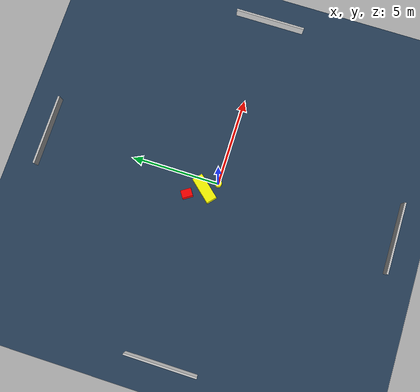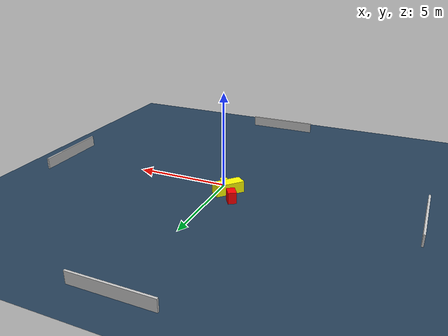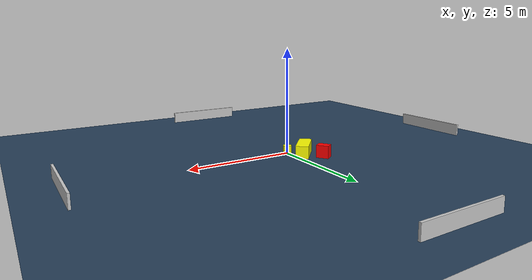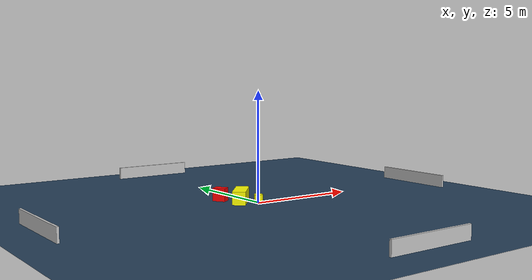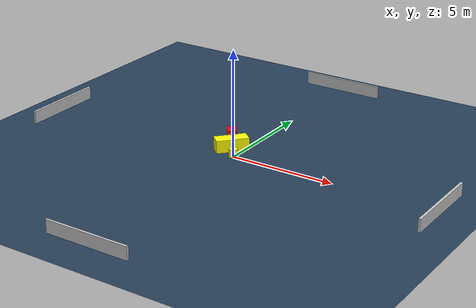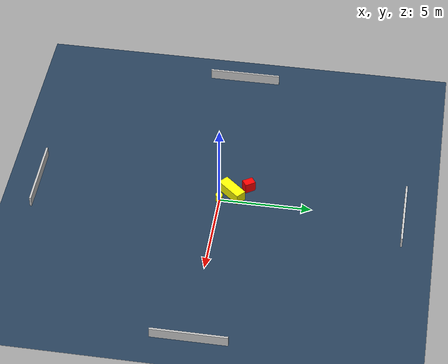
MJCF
<?xml version="1.0" ?>
<mujoco model="generated_environment">
  <option timestep="0.01" integrator="RK4" cone="elliptic"/>
  <default>
    <geom density="1"/>
  </default>
  <asset>
    <texture builtin="gradient" height="3072" name="skybox" rgb1="0.3 0.5 0.7" rgb2="0 0 0" type="skybox" width="512"/>
    <texture builtin="checker" height="300" name="groundplane" rgb1="0.2 0.3 0.4" rgb2="0.1 0.2 0.3" type="2d" width="300"/>
    <material name="groundplane" reflectance="0.2" texrepeat="5 5" texture="groundplane"/>
  </asset>
  <worldbody>
    <light dir="0 0 -1" directional="true" pos="0 0 1.5"/>
    <geom condim="3" friction="0.5 0.005 0.001" material="groundplane" name="floor" pos="0 0 0" size="0 0 0.05" type="plane"/>
    <body name="walls">
      <geom name="wall_1" condim="4" pos="-10.0 0.0 0.3" rgba="0.800000011920929 0.800000011920929 0.800000011920929 1.0" size="0.05 2.0 0.3" type="box"/>
      <geom name="wall_2" condim="4" pos="10.0 0.0 0.3" rgba="0.800000011920929 0.800000011920929 0.800000011920929 1.0" size="0.05 2.0 0.3" type="box"/>
      <geom name="wall_3" condim="4" pos="0.0 -10.0 0.3" rgba="0.800000011920929 0.800000011920929 0.800000011920929 1.0" size="2.0 0.05 0.3" type="box"/>
      <geom name="wall_4" condim="4" pos="0.0 10.0 0.3" rgba="0.800000011920929 0.800000011920929 0.800000011920929 1.0" size="2.0 0.05 0.3" type="box"/>
    </body>
    <body name="robot">
      <joint name="joint_x" type="slide" pos="0 0 0" axis="1 0 0"/>
      <joint name="joint_y" type="slide" pos="0 0 0" axis="0 1 0"/>
      <geom name="robot" type="cylinder" pos="0.0 0.0 0.2" size="0.2 0.2 0.0" mass="5.0" friction="1.0 0.005 0.0001" condim="4" rgba="1.0 1.0 0.0 1.0"/>
    </body>
    <body name="obstacle_1_movable">
      <geom name="obstacle_1_movable" condim="4" pos="-0.5245618048403574 0.6253682014811318 0.3" euler="0 0 48.758268705217596" friction="0.0 0.005 0.001" rgba="1.0 1.0 0.0 1.0" size="0.7594249954382213 0.2991320106109606 0.3" type="box" mass="0.1"/>
      <joint type="free"/>
    </body>
    <body name="obstacle_2_static">
      <geom name="obstacle_2_static" condim="4" pos="-1.0624626727573268 1.473318242991532 0.3" euler="0 0 33.56530854612871" friction="0.0 0.005 0.001" rgba="1.0 0.0 0.0 1.0" size="0.21566894307579354 0.2943024289353795 0.3" type="box"/>
    </body>
  </worldbody>
  <actuator>
    <motor name="actuator_x" joint="joint_x" gear="1" ctrlrange="-1 1"/>
    <motor name="actuator_y" joint="joint_y" gear="1" ctrlrange="-1 1"/>
  </actuator>
</mujoco>
